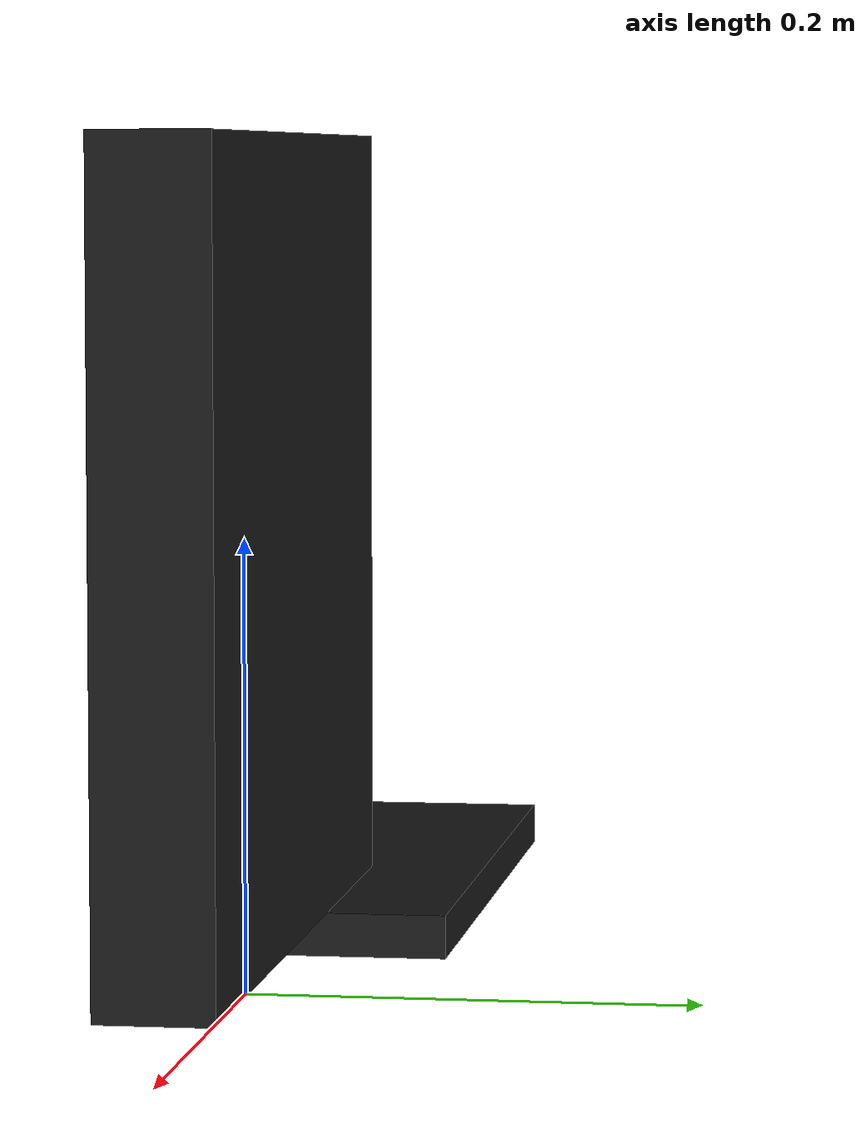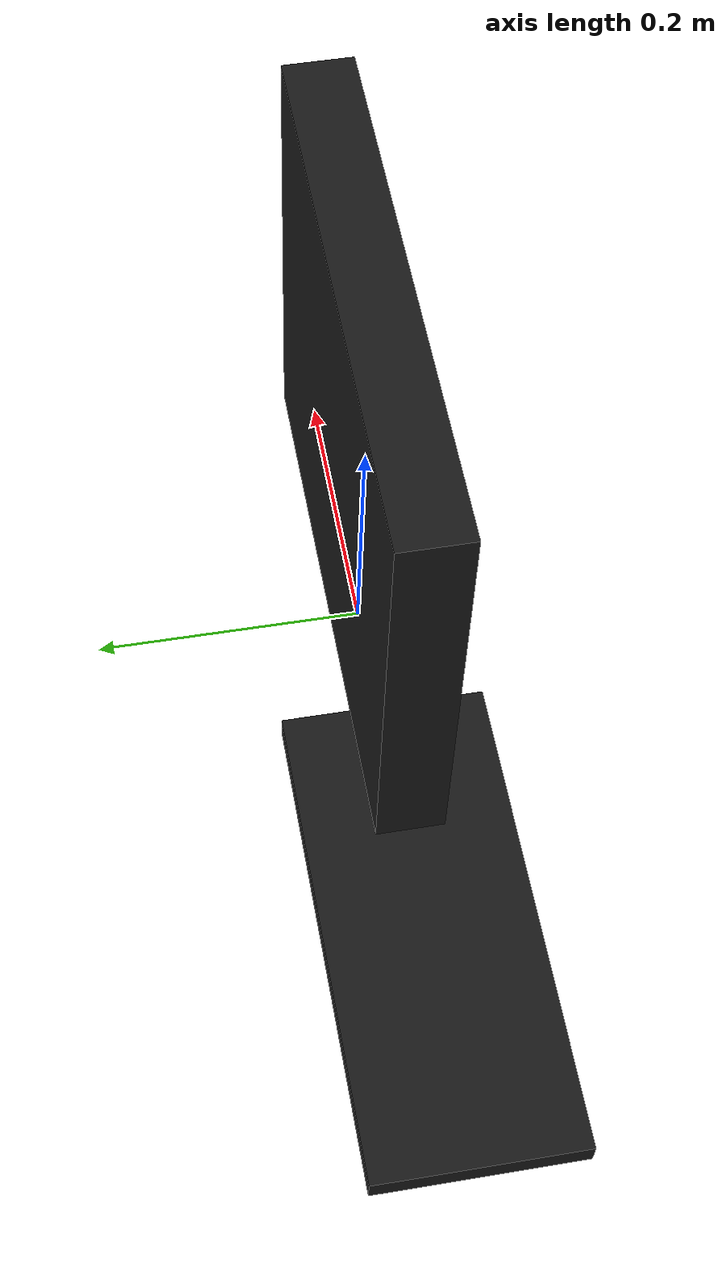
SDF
<?xml version="1.0"?>

<sdf version="1.6">
  <model name='MonitorAndKeyboard'>
    <static>true</static>
    <link name="body">
      <pose>0 0 0 0 0 0</pose>

      <visual name="visual_monitor">
        <geometry>
          <box>
            <size>0.4 0.05 0.35</size>
          </box>
        </geometry>
        <pose>0 0 0.2 0 0 0</pose>
        <material>
          <ambient>0.1 0.1 0.1 1</ambient>
          <diffuse>0.1 0.1 0.1 1</diffuse>
        </material>
      </visual>

      <collision name="collision_monitor">
        <geometry>
          <box>
            <size>0.4 0.05 0.35</size>
          </box>
        </geometry>
        <pose>0 0 0.2 0 0 0</pose>
      </collision>

      <visual name="visual_keyboard">
        <geometry>
          <box>
            <size>0.35 0.15 0.02</size>
          </box>
        </geometry>
        <pose>-0.27 0 0.01 0 0 0</pose>
        <material>
          <ambient>0.1 0.1 0.1 1</ambient>
          <diffuse>0.1 0.1 0.1 1</diffuse>
        </material>
      </visual>

      <collision name="collision_keyboard">
        <geometry>
          <box>
            <size>0.35 0.15 0.02</size>
          </box>
        </geometry>
        <pose>-0.27 0 0.01 0 0 0</pose>
      </collision>

    </link>
  </model>
</sdf>
